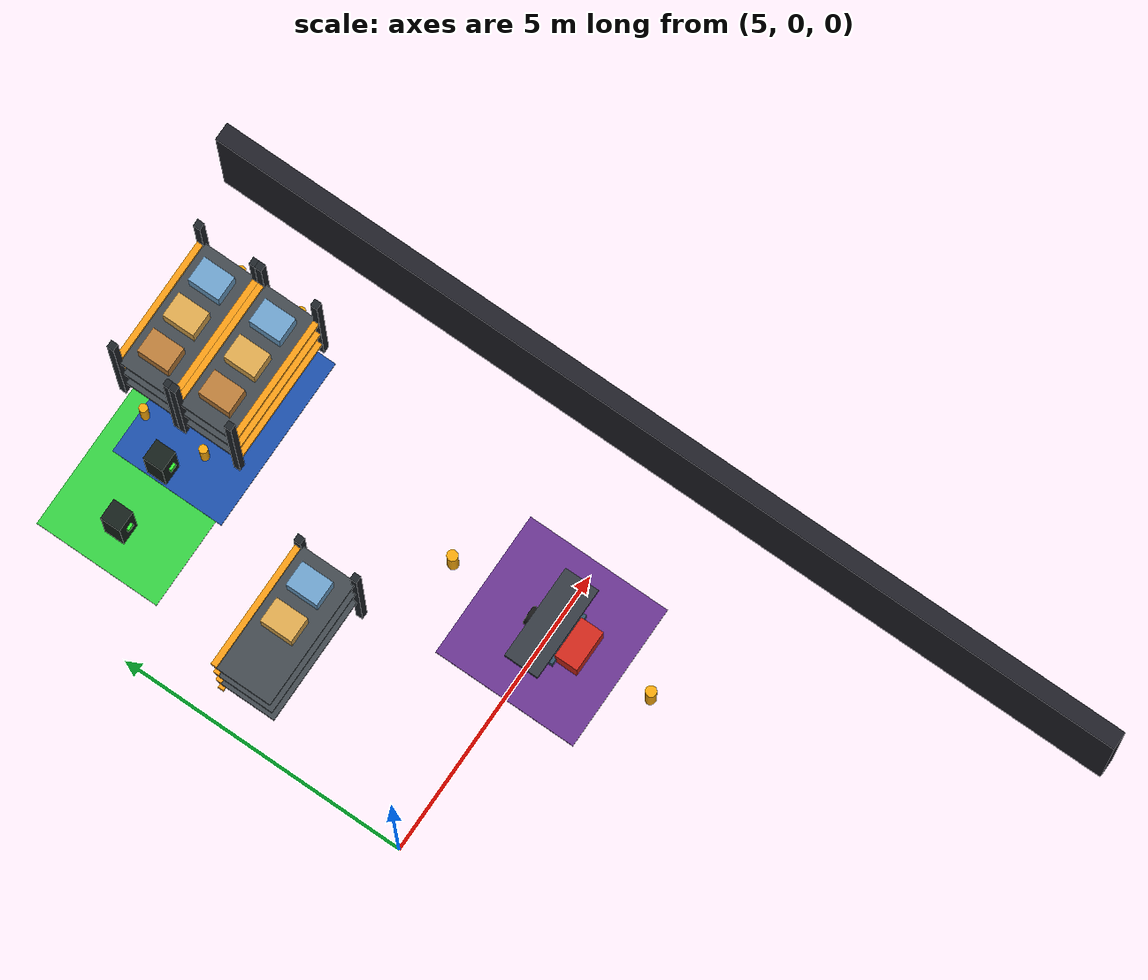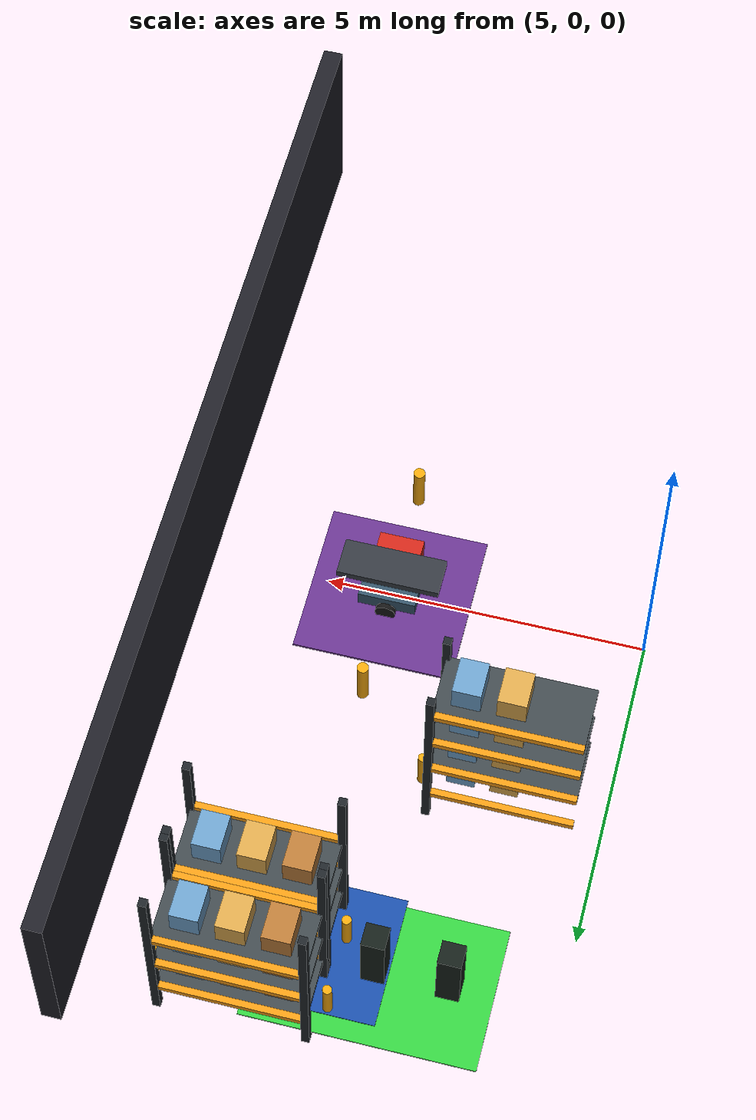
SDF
<sdf version="1.9">
 <world name="synaids_advanced_warehouse">
  <model name="wall_east">
   <static>true</static>
   <pose>12 0 1.5 0 0 0</pose>
   <link name="link">
    <collision name="collision"><geometry><box><size>0.3 16 3</size></box></geometry></collision>
    <visual name="visual">
     <geometry><box><size>0.3 16 3</size></box></geometry>
     <material><ambient>0.08 0.08 0.10 1</ambient><diffuse>0.12 0.12 0.15 1</diffuse></material>
    </visual>
   </link>
  </model>
  <model name="charging_station">
   <static>true</static>
   <pose>9 6 0.02 0 0 0</pose>
   <link name="link">
    <visual name="visual">
     <geometry><box><size>3 2 0.04</size></box></geometry>
     <material><ambient>0.05 0.15 0.35 1</ambient><diffuse>0.10 0.30 0.65 1</diffuse></material>
    </visual>
   </link>
  </model>
  <model name="maintenance_area">
   <static>true</static>
   <pose>9 0 0.02 0 0 0</pose>
   <link name="link">
    <visual name="visual">
     <geometry><box><size>2.5 2.5 0.04</size></box></geometry>
     <material><ambient>0.18 0.08 0.25 1</ambient><diffuse>0.40 0.20 0.55 1</diffuse></material>
    </visual>
   </link>
  </model>
  <model name="R2">
   <pose>9 0 0.25 0 0 0</pose>
   <link name="base_link">
    <inertial><mass>12</mass><inertia><ixx>0.5</ixx><iyy>0.5</iyy><izz>0.5</izz></inertia></inertial>
    <collision name="base_collision"><geometry><box><size>0.9 0.65 0.25</size></box></geometry></collision>
    <visual name="base_visual">
     <geometry><box><size>0.9 0.65 0.25</size></box></geometry>
     <material><ambient>0.10 0.16 0.20 1</ambient><diffuse>0.20 0.32 0.40 1</diffuse></material>
    </visual>
   </link>
   <link name="left_wheel">
    <pose>0 0.38 -0.12 1.5708 0 0</pose>
    <inertial><mass>1</mass><inertia><ixx>0.02</ixx><iyy>0.02</iyy><izz>0.02</izz></inertia></inertial>
    <collision name="collision">
     <geometry><cylinder><radius>0.16</radius><length>0.08</length></cylinder></geometry>
    </collision>
    <visual name="visual">
     <geometry><cylinder><radius>0.16</radius><length>0.08</length></cylinder></geometry>
     <material><ambient>0.03 0.03 0.03 1</ambient><diffuse>0.08 0.08 0.08 1</diffuse></material>
    </visual>
   </link>
   <link name="right_wheel">
    <pose>0 -0.38 -0.12 1.5708 0 0</pose>
    <inertial><mass>1</mass><inertia><ixx>0.02</ixx><iyy>0.02</iyy><izz>0.02</izz></inertia></inertial>
    <collision name="collision">
     <geometry><cylinder><radius>0.16</radius><length>0.08</length></cylinder></geometry>
    </collision>
    <visual name="visual">
     <geometry><cylinder><radius>0.16</radius><length>0.08</length></cylinder></geometry>
     <material><ambient>0.03 0.03 0.03 1</ambient><diffuse>0.08 0.08 0.08 1</diffuse></material>
    </visual>
   </link>
   <link name="sensor">
    <pose>0.35 0 0.18 0 0 0</pose>
    <visual name="visual">
     <geometry><cylinder><radius>0.10</radius><length>0.08</length></cylinder></geometry>
     <material><ambient>0.65 0.65 0.65 1</ambient><diffuse>0.75 0.75 0.75 1</diffuse></material>
    </visual>
   </link>
   <plugin filename="gz-sim-diff-drive-system" name="gz::sim::systems::DiffDrive">
    <left_joint>left_wheel_joint</left_joint>
    <right_joint>right_wheel_joint</right_joint>
    <wheel_separation>0.76</wheel_separation>
    <wheel_radius>0.16</wheel_radius>
    <topic>/R2/cmd_vel</topic>
    <odom_topic>/R2/odom</odom_topic>
    <frame_id>odom</frame_id>
    <child_frame_id>base_link</child_frame_id>
   </plugin>
   <link name="lidar">
    <pose>0 0 0.35 0 0 0</pose>
    <sensor name="lidar_sensor" type="gpu_lidar">
     <topic>/R2/scan</topic>
     <update_rate>10</update_rate>
     <lidar>
      <scan>
       <horizontal>
        <samples>360</samples>
        <resolution>1</resolution>
        <min_angle>-3.14159</min_angle>
        <max_angle>3.14159</max_angle>
       </horizontal>
      </scan>
      <range><min>0.12</min><max>12</max><resolution>0.01</resolution></range>
     </lidar>
    </sensor>
   </link>
   <joint name="left_wheel_joint" type="revolute">
    <parent>base_link</parent>
    <child>left_wheel</child>
    <axis><xyz>0 1 0</xyz></axis>
   </joint>
   <joint name="right_wheel_joint" type="revolute">
    <parent>base_link</parent>
    <child>right_wheel</child>
    <axis><xyz>0 1 0</xyz></axis>
   </joint>
  </model>
  <model name="storage_rack_4_post_2">
   <static>true</static>
   <pose>7.6 2.5 1.7 0 0 0</pose>
   <link name="link">
    <visual name="visual">
     <geometry><box><size>0.12 0.12 3.4</size></box></geometry>
     <material>
      <ambient>0.12 0.14 0.16 1</ambient>
      <diffuse>0.12 0.14 0.16 1</diffuse>
      <specular>0.15 0.15 0.15 1</specular>
     </material>
    </visual>
    <collision name="collision"><geometry><box><size>0.12 0.12 3.4</size></box></geometry></collision>
   </link>
  </model>
  <model name="storage_rack_4_post_3">
   <static>true</static>
   <pose>7.6 3.5 1.7 0 0 0</pose>
   <link name="link">
    <visual name="visual">
     <geometry><box><size>0.12 0.12 3.4</size></box></geometry>
     <material>
      <ambient>0.12 0.14 0.16 1</ambient>
      <diffuse>0.12 0.14 0.16 1</diffuse>
      <specular>0.15 0.15 0.15 1</specular>
     </material>
    </visual>
    <collision name="collision"><geometry><box><size>0.12 0.12 3.4</size></box></geometry></collision>
   </link>
  </model>
  <model name="storage_rack_4_beam_back_0">
   <static>true</static>
   <pose>6.5 3.5 0.65 0 0 0</pose>
   <link name="link">
    <visual name="visual">
     <geometry><box><size>2.2 0.1 0.1</size></box></geometry>
     <material>
      <ambient>0.95 0.60 0.08 1</ambient>
      <diffuse>0.95 0.60 0.08 1</diffuse>
      <specular>0.15 0.15 0.15 1</specular>
     </material>
    </visual>
    <collision name="collision"><geometry><box><size>2.2 0.1 0.1</size></box></geometry></collision>
   </link>
  </model>
  <model name="storage_rack_4_package_0_1">
   <static>true</static>
   <pose>6.5 3.0 0.87 0 0 0</pose>
   <link name="link">
    <visual name="visual">
     <geometry><box><size>0.42 0.55 0.42</size></box></geometry>
     <material>
      <ambient>0.85 0.65 0.30 1</ambient>
      <diffuse>0.85 0.65 0.30 1</diffuse>
      <specular>0.15 0.15 0.15 1</specular>
     </material>
    </visual>
    <collision name="collision"><geometry><box><size>0.42 0.55 0.42</size></box></geometry></collision>
   </link>
  </model>
  <model name="storage_rack_4_package_0_2">
   <static>true</static>
   <pose>7.1499999999999995 3.0 0.87 0 0 0</pose>
   <link name="link">
    <visual name="visual">
     <geometry><box><size>0.42 0.55 0.42</size></box></geometry>
     <material>
      <ambient>0.42 0.62 0.78 1</ambient>
      <diffuse>0.42 0.62 0.78 1</diffuse>
      <specular>0.15 0.15 0.15 1</specular>
     </material>
    </visual>
    <collision name="collision"><geometry><box><size>0.42 0.55 0.42</size></box></geometry></collision>
   </link>
  </model>
  <model name="storage_rack_4_beam_back_1">
   <static>true</static>
   <pose>6.5 3.5 1.4300000000000002 0 0 0</pose>
   <link name="link">
    <visual name="visual">
     <geometry><box><size>2.2 0.1 0.1</size></box></geometry>
     <material>
      <ambient>0.95 0.60 0.08 1</ambient>
      <diffuse>0.95 0.60 0.08 1</diffuse>
      <specular>0.15 0.15 0.15 1</specular>
     </material>
    </visual>
    <collision name="collision"><geometry><box><size>2.2 0.1 0.1</size></box></geometry></collision>
   </link>
  </model>
  <model name="storage_rack_4_shelf_1">
   <static>true</static>
   <pose>6.5 3.0 1.35 0 0 0</pose>
   <link name="link">
    <visual name="visual">
     <geometry><box><size>2.2 1.0 0.08</size></box></geometry>
     <material>
      <ambient>0.25 0.28 0.30 1</ambient>
      <diffuse>0.25 0.28 0.30 1</diffuse>
      <specular>0.15 0.15 0.15 1</specular>
     </material>
    </visual>
    <collision name="collision"><geometry><box><size>2.2 1.0 0.08</size></box></geometry></collision>
   </link>
  </model>
  <model name="storage_rack_4_package_1_1">
   <static>true</static>
   <pose>6.5 3.0 1.6500000000000001 0 0 0</pose>
   <link name="link">
    <visual name="visual">
     <geometry><box><size>0.42 0.55 0.42</size></box></geometry>
     <material>
      <ambient>0.85 0.65 0.30 1</ambient>
      <diffuse>0.85 0.65 0.30 1</diffuse>
      <specular>0.15 0.15 0.15 1</specular>
     </material>
    </visual>
    <collision name="collision"><geometry><box><size>0.42 0.55 0.42</size></box></geometry></collision>
   </link>
  </model>
  <model name="storage_rack_4_package_1_2">
   <static>true</static>
   <pose>7.1499999999999995 3.0 1.6500000000000001 0 0 0</pose>
   <link name="link">
    <visual name="visual">
     <geometry><box><size>0.42 0.55 0.42</size></box></geometry>
     <material>
      <ambient>0.42 0.62 0.78 1</ambient>
      <diffuse>0.42 0.62 0.78 1</diffuse>
      <specular>0.15 0.15 0.15 1</specular>
     </material>
    </visual>
    <collision name="collision"><geometry><box><size>0.42 0.55 0.42</size></box></geometry></collision>
   </link>
  </model>
  <model name="storage_rack_4_beam_back_2">
   <static>true</static>
   <pose>6.5 3.5 2.21 0 0 0</pose>
   <link name="link">
    <visual name="visual">
     <geometry><box><size>2.2 0.1 0.1</size></box></geometry>
     <material>
      <ambient>0.95 0.60 0.08 1</ambient>
      <diffuse>0.95 0.60 0.08 1</diffuse>
      <specular>0.15 0.15 0.15 1</specular>
     </material>
    </visual>
    <collision name="collision"><geometry><box><size>2.2 0.1 0.1</size></box></geometry></collision>
   </link>
  </model>
  <model name="storage_rack_4_shelf_2">
   <static>true</static>
   <pose>6.5 3.0 2.13 0 0 0</pose>
   <link name="link">
    <visual name="visual">
     <geometry><box><size>2.2 1.0 0.08</size></box></geometry>
     <material>
      <ambient>0.25 0.28 0.30 1</ambient>
      <diffuse>0.25 0.28 0.30 1</diffuse>
      <specular>0.15 0.15 0.15 1</specular>
     </material>
    </visual>
    <collision name="collision"><geometry><box><size>2.2 1.0 0.08</size></box></geometry></collision>
   </link>
  </model>
  <model name="storage_rack_4_package_2_1">
   <static>true</static>
   <pose>6.5 3.0 2.43 0 0 0</pose>
   <link name="link">
    <visual name="visual">
     <geometry><box><size>0.42 0.55 0.42</size></box></geometry>
     <material>
      <ambient>0.85 0.65 0.30 1</ambient>
      <diffuse>0.85 0.65 0.30 1</diffuse>
      <specular>0.15 0.15 0.15 1</specular>
     </material>
    </visual>
    <collision name="collision"><geometry><box><size>0.42 0.55 0.42</size></box></geometry></collision>
   </link>
  </model>
  <model name="storage_rack_4_package_2_2">
   <static>true</static>
   <pose>7.1499999999999995 3.0 2.43 0 0 0</pose>
   <link name="link">
    <visual name="visual">
     <geometry><box><size>0.42 0.55 0.42</size></box></geometry>
     <material>
      <ambient>0.42 0.62 0.78 1</ambient>
      <diffuse>0.42 0.62 0.78 1</diffuse>
      <specular>0.15 0.15 0.15 1</specular>
     </material>
    </visual>
    <collision name="collision"><geometry><box><size>0.42 0.55 0.42</size></box></geometry></collision>
   </link>
  </model>
  <model name="storage_rack_4_beam_back_3">
   <static>true</static>
   <pose>6.5 3.5 2.9899999999999998 0 0 0</pose>
   <link name="link">
    <visual name="visual">
     <geometry><box><size>2.2 0.1 0.1</size></box></geometry>
     <material>
      <ambient>0.95 0.60 0.08 1</ambient>
      <diffuse>0.95 0.60 0.08 1</diffuse>
      <specular>0.15 0.15 0.15 1</specular>
     </material>
    </visual>
    <collision name="collision"><geometry><box><size>2.2 0.1 0.1</size></box></geometry></collision>
   </link>
  </model>
  <model name="storage_rack_4_shelf_3">
   <static>true</static>
   <pose>6.5 3.0 2.9099999999999997 0 0 0</pose>
   <link name="link">
    <visual name="visual">
     <geometry><box><size>2.2 1.0 0.08</size></box></geometry>
     <material>
      <ambient>0.25 0.28 0.30 1</ambient>
      <diffuse>0.25 0.28 0.30 1</diffuse>
      <specular>0.15 0.15 0.15 1</specular>
     </material>
    </visual>
    <collision name="collision"><geometry><box><size>2.2 1.0 0.08</size></box></geometry></collision>
   </link>
  </model>
  <model name="storage_rack_4_package_3_1">
   <static>true</static>
   <pose>6.5 3.0 3.21 0 0 0</pose>
   <link name="link">
    <visual name="visual">
     <geometry><box><size>0.42 0.55 0.42</size></box></geometry>
     <material>
      <ambient>0.85 0.65 0.30 1</ambient>
      <diffuse>0.85 0.65 0.30 1</diffuse>
      <specular>0.15 0.15 0.15 1</specular>
     </material>
    </visual>
    <collision name="collision"><geometry><box><size>0.42 0.55 0.42</size></box></geometry></collision>
   </link>
  </model>
  <model name="storage_rack_4_package_3_2">
   <static>true</static>
   <pose>7.1499999999999995 3.0 3.21 0 0 0</pose>
   <link name="link">
    <visual name="visual">
     <geometry><box><size>0.42 0.55 0.42</size></box></geometry>
     <material>
      <ambient>0.42 0.62 0.78 1</ambient>
      <diffuse>0.42 0.62 0.78 1</diffuse>
      <specular>0.15 0.15 0.15 1</specular>
     </material>
    </visual>
    <collision name="collision"><geometry><box><size>0.42 0.55 0.42</size></box></geometry></collision>
   </link>
  </model>
  <model name="storage_rack_4_guard_right">
   <static>true</static>
   <pose>7.779999999999999 3.0 0.35 0 0 0</pose>
   <link name="link">
    <visual name="visual">
     <geometry><cylinder><radius>0.07</radius><length>0.7</length></cylinder></geometry>
     <material>
      <ambient>0.95 0.65 0.05 1</ambient>
      <diffuse>0.95 0.65 0.05 1</diffuse>
      <specular>0.15 0.15 0.15 1</specular>
     </material>
    </visual>
    <collision name="collision">
     <geometry><cylinder><radius>0.07</radius><length>0.7</length></cylinder></geometry>
    </collision>
   </link>
  </model>
  <model name="wall_rack_right_1_post_0">
   <static>true</static>
   <pose>8.4 5.3 1.7 0 0 0</pose>
   <link name="link">
    <visual name="visual">
     <geometry><box><size>0.12 0.12 3.4</size></box></geometry>
     <material>
      <ambient>0.12 0.14 0.16 1</ambient>
      <diffuse>0.12 0.14 0.16 1</diffuse>
      <specular>0.15 0.15 0.15 1</specular>
     </material>
    </visual>
    <collision name="collision"><geometry><box><size>0.12 0.12 3.4</size></box></geometry></collision>
   </link>
  </model>
  <model name="wall_rack_right_1_post_1">
   <static>true</static>
   <pose>8.4 6.3 1.7 0 0 0</pose>
   <link name="link">
    <visual name="visual">
     <geometry><box><size>0.12 0.12 3.4</size></box></geometry>
     <material>
      <ambient>0.12 0.14 0.16 1</ambient>
      <diffuse>0.12 0.14 0.16 1</diffuse>
      <specular>0.15 0.15 0.15 1</specular>
     </material>
    </visual>
    <collision name="collision"><geometry><box><size>0.12 0.12 3.4</size></box></geometry></collision>
   </link>
  </model>
  <model name="wall_rack_right_1_post_2">
   <static>true</static>
   <pose>10.6 5.3 1.7 0 0 0</pose>
   <link name="link">
    <visual name="visual">
     <geometry><box><size>0.12 0.12 3.4</size></box></geometry>
     <material>
      <ambient>0.12 0.14 0.16 1</ambient>
      <diffuse>0.12 0.14 0.16 1</diffuse>
      <specular>0.15 0.15 0.15 1</specular>
     </material>
    </visual>
    <collision name="collision"><geometry><box><size>0.12 0.12 3.4</size></box></geometry></collision>
   </link>
  </model>
  <model name="wall_rack_right_1_post_3">
   <static>true</static>
   <pose>10.6 6.3 1.7 0 0 0</pose>
   <link name="link">
    <visual name="visual">
     <geometry><box><size>0.12 0.12 3.4</size></box></geometry>
     <material>
      <ambient>0.12 0.14 0.16 1</ambient>
      <diffuse>0.12 0.14 0.16 1</diffuse>
      <specular>0.15 0.15 0.15 1</specular>
     </material>
    </visual>
    <collision name="collision"><geometry><box><size>0.12 0.12 3.4</size></box></geometry></collision>
   </link>
  </model>
  <model name="wall_rack_right_1_beam_front_0">
   <static>true</static>
   <pose>9.5 5.3 0.65 0 0 0</pose>
   <link name="link">
    <visual name="visual">
     <geometry><box><size>2.2 0.1 0.1</size></box></geometry>
     <material>
      <ambient>0.95 0.60 0.08 1</ambient>
      <diffuse>0.95 0.60 0.08 1</diffuse>
      <specular>0.15 0.15 0.15 1</specular>
     </material>
    </visual>
    <collision name="collision"><geometry><box><size>2.2 0.1 0.1</size></box></geometry></collision>
   </link>
  </model>
  <model name="wall_rack_right_1_beam_back_0">
   <static>true</static>
   <pose>9.5 6.3 0.65 0 0 0</pose>
   <link name="link">
    <visual name="visual">
     <geometry><box><size>2.2 0.1 0.1</size></box></geometry>
     <material>
      <ambient>0.95 0.60 0.08 1</ambient>
      <diffuse>0.95 0.60 0.08 1</diffuse>
      <specular>0.15 0.15 0.15 1</specular>
     </material>
    </visual>
    <collision name="collision"><geometry><box><size>2.2 0.1 0.1</size></box></geometry></collision>
   </link>
  </model>
  <model name="wall_rack_right_1_shelf_0">
   <static>true</static>
   <pose>9.5 5.8 0.5700000000000001 0 0 0</pose>
   <link name="link">
    <visual name="visual">
     <geometry><box><size>2.2 1.0 0.08</size></box></geometry>
     <material>
      <ambient>0.25 0.28 0.30 1</ambient>
      <diffuse>0.25 0.28 0.30 1</diffuse>
      <specular>0.15 0.15 0.15 1</specular>
     </material>
    </visual>
    <collision name="collision"><geometry><box><size>2.2 1.0 0.08</size></box></geometry></collision>
   </link>
  </model>
  <model name="wall_rack_right_1_package_0_0">
   <static>true</static>
   <pose>8.85 5.8 0.87 0 0 0</pose>
   <link name="link">
    <visual name="visual">
     <geometry><box><size>0.42 0.55 0.42</size></box></geometry>
     <material>
      <ambient>0.72 0.48 0.22 1</ambient>
      <diffuse>0.72 0.48 0.22 1</diffuse>
      <specular>0.15 0.15 0.15 1</specular>
     </material>
    </visual>
    <collision name="collision"><geometry><box><size>0.42 0.55 0.42</size></box></geometry></collision>
   </link>
  </model>
  <model name="wall_rack_right_1_package_0_1">
   <static>true</static>
   <pose>9.5 5.8 0.87 0 0 0</pose>
   <link name="link">
    <visual name="visual">
     <geometry><box><size>0.42 0.55 0.42</size></box></geometry>
     <material>
      <ambient>0.85 0.65 0.30 1</ambient>
      <diffuse>0.85 0.65 0.30 1</diffuse>
      <specular>0.15 0.15 0.15 1</specular>
     </material>
    </visual>
    <collision name="collision"><geometry><box><size>0.42 0.55 0.42</size></box></geometry></collision>
   </link>
  </model>
  <model name="wall_rack_right_1_package_0_2">
   <static>true</static>
   <pose>10.15 5.8 0.87 0 0 0</pose>
   <link name="link">
    <visual name="visual">
     <geometry><box><size>0.42 0.55 0.42</size></box></geometry>
     <material>
      <ambient>0.42 0.62 0.78 1</ambient>
      <diffuse>0.42 0.62 0.78 1</diffuse>
      <specular>0.15 0.15 0.15 1</specular>
     </material>
    </visual>
    <collision name="collision"><geometry><box><size>0.42 0.55 0.42</size></box></geometry></collision>
   </link>
  </model>
  <model name="wall_rack_right_1_beam_front_1">
   <static>true</static>
   <pose>9.5 5.3 1.4300000000000002 0 0 0</pose>
   <link name="link">
    <visual name="visual">
     <geometry><box><size>2.2 0.1 0.1</size></box></geometry>
     <material>
      <ambient>0.95 0.60 0.08 1</ambient>
      <diffuse>0.95 0.60 0.08 1</diffuse>
      <specular>0.15 0.15 0.15 1</specular>
     </material>
    </visual>
    <collision name="collision"><geometry><box><size>2.2 0.1 0.1</size></box></geometry></collision>
   </link>
  </model>
  <model name="wall_rack_right_1_beam_back_1">
   <static>true</static>
   <pose>9.5 6.3 1.4300000000000002 0 0 0</pose>
   <link name="link">
    <visual name="visual">
     <geometry><box><size>2.2 0.1 0.1</size></box></geometry>
     <material>
      <ambient>0.95 0.60 0.08 1</ambient>
      <diffuse>0.95 0.60 0.08 1</diffuse>
      <specular>0.15 0.15 0.15 1</specular>
     </material>
    </visual>
    <collision name="collision"><geometry><box><size>2.2 0.1 0.1</size></box></geometry></collision>
   </link>
  </model>
  <model name="wall_rack_right_1_shelf_1">
   <static>true</static>
   <pose>9.5 5.8 1.35 0 0 0</pose>
   <link name="link">
    <visual name="visual">
     <geometry><box><size>2.2 1.0 0.08</size></box></geometry>
     <material>
      <ambient>0.25 0.28 0.30 1</ambient>
      <diffuse>0.25 0.28 0.30 1</diffuse>
      <specular>0.15 0.15 0.15 1</specular>
     </material>
    </visual>
    <collision name="collision"><geometry><box><size>2.2 1.0 0.08</size></box></geometry></collision>
   </link>
  </model>
  <model name="wall_rack_right_1_package_1_0">
   <static>true</static>
   <pose>8.85 5.8 1.6500000000000001 0 0 0</pose>
   <link name="link">
    <visual name="visual">
     <geometry><box><size>0.42 0.55 0.42</size></box></geometry>
     <material>
      <ambient>0.72 0.48 0.22 1</ambient>
      <diffuse>0.72 0.48 0.22 1</diffuse>
      <specular>0.15 0.15 0.15 1</specular>
     </material>
    </visual>
    <collision name="collision"><geometry><box><size>0.42 0.55 0.42</size></box></geometry></collision>
   </link>
  </model>
  <model name="wall_rack_right_1_package_1_1">
   <static>true</static>
   <pose>9.5 5.8 1.6500000000000001 0 0 0</pose>
   <link name="link">
    <visual name="visual">
     <geometry><box><size>0.42 0.55 0.42</size></box></geometry>
     <material>
      <ambient>0.85 0.65 0.30 1</ambient>
      <diffuse>0.85 0.65 0.30 1</diffuse>
      <specular>0.15 0.15 0.15 1</specular>
     </material>
    </visual>
    <collision name="collision"><geometry><box><size>0.42 0.55 0.42</size></box></geometry></collision>
   </link>
  </model>
  <model name="wall_rack_right_1_package_1_2">
   <static>true</static>
   <pose>10.15 5.8 1.6500000000000001 0 0 0</pose>
   <link name="link">
    <visual name="visual">
     <geometry><box><size>0.42 0.55 0.42</size></box></geometry>
     <material>
      <ambient>0.42 0.62 0.78 1</ambient>
      <diffuse>0.42 0.62 0.78 1</diffuse>
      <specular>0.15 0.15 0.15 1</specular>
     </material>
    </visual>
    <collision name="collision"><geometry><box><size>0.42 0.55 0.42</size></box></geometry></collision>
   </link>
  </model>
  <model name="wall_rack_right_1_beam_front_2">
   <static>true</static>
   <pose>9.5 5.3 2.21 0 0 0</pose>
   <link name="link">
    <visual name="visual">
     <geometry><box><size>2.2 0.1 0.1</size></box></geometry>
     <material>
      <ambient>0.95 0.60 0.08 1</ambient>
      <diffuse>0.95 0.60 0.08 1</diffuse>
      <specular>0.15 0.15 0.15 1</specular>
     </material>
    </visual>
    <collision name="collision"><geometry><box><size>2.2 0.1 0.1</size></box></geometry></collision>
   </link>
  </model>
  <model name="wall_rack_right_1_beam_back_2">
   <static>true</static>
   <pose>9.5 6.3 2.21 0 0 0</pose>
   <link name="link">
    <visual name="visual">
     <geometry><box><size>2.2 0.1 0.1</size></box></geometry>
     <material>
      <ambient>0.95 0.60 0.08 1</ambient>
      <diffuse>0.95 0.60 0.08 1</diffuse>
      <specular>0.15 0.15 0.15 1</specular>
     </material>
    </visual>
    <collision name="collision"><geometry><box><size>2.2 0.1 0.1</size></box></geometry></collision>
   </link>
  </model>
  <model name="wall_rack_right_1_shelf_2">
   <static>true</static>
   <pose>9.5 5.8 2.13 0 0 0</pose>
   <link name="link">
    <visual name="visual">
     <geometry><box><size>2.2 1.0 0.08</size></box></geometry>
     <material>
      <ambient>0.25 0.28 0.30 1</ambient>
      <diffuse>0.25 0.28 0.30 1</diffuse>
      <specular>0.15 0.15 0.15 1</specular>
     </material>
    </visual>
    <collision name="collision"><geometry><box><size>2.2 1.0 0.08</size></box></geometry></collision>
   </link>
  </model>
  <model name="wall_rack_right_1_package_2_0">
   <static>true</static>
   <pose>8.85 5.8 2.43 0 0 0</pose>
   <link name="link">
    <visual name="visual">
     <geometry><box><size>0.42 0.55 0.42</size></box></geometry>
     <material>
      <ambient>0.72 0.48 0.22 1</ambient>
      <diffuse>0.72 0.48 0.22 1</diffuse>
      <specular>0.15 0.15 0.15 1</specular>
     </material>
    </visual>
    <collision name="collision"><geometry><box><size>0.42 0.55 0.42</size></box></geometry></collision>
   </link>
  </model>
  <model name="wall_rack_right_1_package_2_1">
   <static>true</static>
   <pose>9.5 5.8 2.43 0 0 0</pose>
   <link name="link">
    <visual name="visual">
     <geometry><box><size>0.42 0.55 0.42</size></box></geometry>
     <material>
      <ambient>0.85 0.65 0.30 1</ambient>
      <diffuse>0.85 0.65 0.30 1</diffuse>
      <specular>0.15 0.15 0.15 1</specular>
     </material>
    </visual>
    <collision name="collision"><geometry><box><size>0.42 0.55 0.42</size></box></geometry></collision>
   </link>
  </model>
  <model name="wall_rack_right_1_package_2_2">
   <static>true</static>
   <pose>10.15 5.8 2.43 0 0 0</pose>
   <link name="link">
    <visual name="visual">
     <geometry><box><size>0.42 0.55 0.42</size></box></geometry>
     <material>
      <ambient>0.42 0.62 0.78 1</ambient>
      <diffuse>0.42 0.62 0.78 1</diffuse>
      <specular>0.15 0.15 0.15 1</specular>
     </material>
    </visual>
    <collision name="collision"><geometry><box><size>0.42 0.55 0.42</size></box></geometry></collision>
   </link>
  </model>
  <model name="wall_rack_right_1_guard_left">
   <static>true</static>
   <pose>8.22 5.8 0.35 0 0 0</pose>
   <link name="link">
    <visual name="visual">
     <geometry><cylinder><radius>0.07</radius><length>0.7</length></cylinder></geometry>
     <material>
      <ambient>0.95 0.65 0.05 1</ambient>
      <diffuse>0.95 0.65 0.05 1</diffuse>
      <specular>0.15 0.15 0.15 1</specular>
     </material>
    </visual>
    <collision name="collision">
     <geometry><cylinder><radius>0.07</radius><length>0.7</length></cylinder></geometry>
    </collision>
   </link>
  </model>
  <model name="wall_rack_right_1_guard_right">
   <static>true</static>
   <pose>10.78 5.8 0.35 0 0 0</pose>
   <link name="link">
    <visual name="visual">
     <geometry><cylinder><radius>0.07</radius><length>0.7</length></cylinder></geometry>
     <material>
      <ambient>0.95 0.65 0.05 1</ambient>
      <diffuse>0.95 0.65 0.05 1</diffuse>
      <specular>0.15 0.15 0.15 1</specular>
     </material>
    </visual>
    <collision name="collision">
     <geometry><cylinder><radius>0.07</radius><length>0.7</length></cylinder></geometry>
    </collision>
   </link>
  </model>
  <model name="wall_rack_right_2_post_0">
   <static>true</static>
   <pose>8.4 6.4 1.7 0 0 0</pose>
   <link name="link">
    <visual name="visual">
     <geometry><box><size>0.12 0.12 3.4</size></box></geometry>
     <material>
      <ambient>0.12 0.14 0.16 1</ambient>
      <diffuse>0.12 0.14 0.16 1</diffuse>
      <specular>0.15 0.15 0.15 1</specular>
     </material>
    </visual>
    <collision name="collision"><geometry><box><size>0.12 0.12 3.4</size></box></geometry></collision>
   </link>
  </model>
  <model name="wall_rack_right_2_post_1">
   <static>true</static>
   <pose>8.4 7.4 1.7 0 0 0</pose>
   <link name="link">
    <visual name="visual">
     <geometry><box><size>0.12 0.12 3.4</size></box></geometry>
     <material>
      <ambient>0.12 0.14 0.16 1</ambient>
      <diffuse>0.12 0.14 0.16 1</diffuse>
      <specular>0.15 0.15 0.15 1</specular>
     </material>
    </visual>
    <collision name="collision"><geometry><box><size>0.12 0.12 3.4</size></box></geometry></collision>
   </link>
  </model>
  <model name="wall_rack_right_2_post_2">
   <static>true</static>
   <pose>10.6 6.4 1.7 0 0 0</pose>
   <link name="link">
    <visual name="visual">
     <geometry><box><size>0.12 0.12 3.4</size></box></geometry>
     <material>
      <ambient>0.12 0.14 0.16 1</ambient>
      <diffuse>0.12 0.14 0.16 1</diffuse>
      <specular>0.15 0.15 0.15 1</specular>
     </material>
    </visual>
    <collision name="collision"><geometry><box><size>0.12 0.12 3.4</size></box></geometry></collision>
   </link>
  </model>
  <model name="wall_rack_right_2_post_3">
   <static>true</static>
   <pose>10.6 7.4 1.7 0 0 0</pose>
   <link name="link">
    <visual name="visual">
     <geometry><box><size>0.12 0.12 3.4</size></box></geometry>
     <material>
      <ambient>0.12 0.14 0.16 1</ambient>
      <diffuse>0.12 0.14 0.16 1</diffuse>
      <specular>0.15 0.15 0.15 1</specular>
     </material>
    </visual>
    <collision name="collision"><geometry><box><size>0.12 0.12 3.4</size></box></geometry></collision>
   </link>
  </model>
  <model name="wall_rack_right_2_beam_front_0">
   <static>true</static>
   <pose>9.5 6.4 0.65 0 0 0</pose>
   <link name="link">
    <visual name="visual">
     <geometry><box><size>2.2 0.1 0.1</size></box></geometry>
     <material>
      <ambient>0.95 0.60 0.08 1</ambient>
      <diffuse>0.95 0.60 0.08 1</diffuse>
      <specular>0.15 0.15 0.15 1</specular>
     </material>
    </visual>
    <collision name="collision"><geometry><box><size>2.2 0.1 0.1</size></box></geometry></collision>
   </link>
  </model>
  <model name="wall_rack_right_2_beam_back_0">
   <static>true</static>
   <pose>9.5 7.4 0.65 0 0 0</pose>
   <link name="link">
    <visual name="visual">
     <geometry><box><size>2.2 0.1 0.1</size></box></geometry>
     <material>
      <ambient>0.95 0.60 0.08 1</ambient>
      <diffuse>0.95 0.60 0.08 1</diffuse>
      <specular>0.15 0.15 0.15 1</specular>
     </material>
    </visual>
    <collision name="collision"><geometry><box><size>2.2 0.1 0.1</size></box></geometry></collision>
   </link>
  </model>
  <model name="wall_rack_right_2_shelf_0">
   <static>true</static>
   <pose>9.5 6.9 0.5700000000000001 0 0 0</pose>
   <link name="link">
    <visual name="visual">
     <geometry><box><size>2.2 1.0 0.08</size></box></geometry>
     <material>
      <ambient>0.25 0.28 0.30 1</ambient>
      <diffuse>0.25 0.28 0.30 1</diffuse>
      <specular>0.15 0.15 0.15 1</specular>
     </material>
    </visual>
    <collision name="collision"><geometry><box><size>2.2 1.0 0.08</size></box></geometry></collision>
   </link>
  </model>
  <model name="wall_rack_right_2_package_0_0">
   <static>true</static>
   <pose>8.85 6.9 0.87 0 0 0</pose>
   <link name="link">
    <visual name="visual">
     <geometry><box><size>0.42 0.55 0.42</size></box></geometry>
     <material>
      <ambient>0.72 0.48 0.22 1</ambient>
      <diffuse>0.72 0.48 0.22 1</diffuse>
      <specular>0.15 0.15 0.15 1</specular>
     </material>
    </visual>
    <collision name="collision"><geometry><box><size>0.42 0.55 0.42</size></box></geometry></collision>
   </link>
  </model>
  <model name="wall_rack_right_2_package_0_1">
   <static>true</static>
   <pose>9.5 6.9 0.87 0 0 0</pose>
   <link name="link">
    <visual name="visual">
     <geometry><box><size>0.42 0.55 0.42</size></box></geometry>
     <material>
      <ambient>0.85 0.65 0.30 1</ambient>
      <diffuse>0.85 0.65 0.30 1</diffuse>
      <specular>0.15 0.15 0.15 1</specular>
     </material>
    </visual>
    <collision name="collision"><geometry><box><size>0.42 0.55 0.42</size></box></geometry></collision>
   </link>
  </model>
  <model name="wall_rack_right_2_package_0_2">
   <static>true</static>
   <pose>10.15 6.9 0.87 0 0 0</pose>
   <link name="link">
    <visual name="visual">
     <geometry><box><size>0.42 0.55 0.42</size></box></geometry>
     <material>
      <ambient>0.42 0.62 0.78 1</ambient>
      <diffuse>0.42 0.62 0.78 1</diffuse>
      <specular>0.15 0.15 0.15 1</specular>
     </material>
    </visual>
    <collision name="collision"><geometry><box><size>0.42 0.55 0.42</size></box></geometry></collision>
   </link>
  </model>
  <model name="wall_rack_right_2_beam_front_1">
   <static>true</static>
   <pose>9.5 6.4 1.4300000000000002 0 0 0</pose>
   <link name="link">
    <visual name="visual">
     <geometry><box><size>2.2 0.1 0.1</size></box></geometry>
     <material>
      <ambient>0.95 0.60 0.08 1</ambient>
      <diffuse>0.95 0.60 0.08 1</diffuse>
      <specular>0.15 0.15 0.15 1</specular>
     </material>
    </visual>
    <collision name="collision"><geometry><box><size>2.2 0.1 0.1</size></box></geometry></collision>
   </link>
  </model>
  <model name="wall_rack_right_2_beam_back_1">
   <static>true</static>
   <pose>9.5 7.4 1.4300000000000002 0 0 0</pose>
   <link name="link">
    <visual name="visual">
     <geometry><box><size>2.2 0.1 0.1</size></box></geometry>
     <material>
      <ambient>0.95 0.60 0.08 1</ambient>
      <diffuse>0.95 0.60 0.08 1</diffuse>
      <specular>0.15 0.15 0.15 1</specular>
     </material>
    </visual>
    <collision name="collision"><geometry><box><size>2.2 0.1 0.1</size></box></geometry></collision>
   </link>
  </model>
  <model name="wall_rack_right_2_shelf_1">
   <static>true</static>
   <pose>9.5 6.9 1.35 0 0 0</pose>
   <link name="link">
    <visual name="visual">
     <geometry><box><size>2.2 1.0 0.08</size></box></geometry>
     <material>
      <ambient>0.25 0.28 0.30 1</ambient>
      <diffuse>0.25 0.28 0.30 1</diffuse>
      <specular>0.15 0.15 0.15 1</specular>
     </material>
    </visual>
    <collision name="collision"><geometry><box><size>2.2 1.0 0.08</size></box></geometry></collision>
   </link>
  </model>
  <model name="wall_rack_right_2_package_1_0">
   <static>true</static>
   <pose>8.85 6.9 1.6500000000000001 0 0 0</pose>
   <link name="link">
    <visual name="visual">
     <geometry><box><size>0.42 0.55 0.42</size></box></geometry>
     <material>
      <ambient>0.72 0.48 0.22 1</ambient>
      <diffuse>0.72 0.48 0.22 1</diffuse>
      <specular>0.15 0.15 0.15 1</specular>
     </material>
    </visual>
    <collision name="collision"><geometry><box><size>0.42 0.55 0.42</size></box></geometry></collision>
   </link>
  </model>
  <model name="wall_rack_right_2_package_1_1">
   <static>true</static>
   <pose>9.5 6.9 1.6500000000000001 0 0 0</pose>
   <link name="link">
    <visual name="visual">
     <geometry><box><size>0.42 0.55 0.42</size></box></geometry>
     <material>
      <ambient>0.85 0.65 0.30 1</ambient>
      <diffuse>0.85 0.65 0.30 1</diffuse>
      <specular>0.15 0.15 0.15 1</specular>
     </material>
    </visual>
    <collision name="collision"><geometry><box><size>0.42 0.55 0.42</size></box></geometry></collision>
   </link>
  </model>
  <model name="wall_rack_right_2_package_1_2">
   <static>true</static>
   <pose>10.15 6.9 1.6500000000000001 0 0 0</pose>
   <link name="link">
    <visual name="visual">
     <geometry><box><size>0.42 0.55 0.42</size></box></geometry>
     <material>
      <ambient>0.42 0.62 0.78 1</ambient>
      <diffuse>0.42 0.62 0.78 1</diffuse>
      <specular>0.15 0.15 0.15 1</specular>
     </material>
    </visual>
    <collision name="collision"><geometry><box><size>0.42 0.55 0.42</size></box></geometry></collision>
   </link>
  </model>
  <model name="wall_rack_right_2_beam_front_2">
   <static>true</static>
   <pose>9.5 6.4 2.21 0 0 0</pose>
   <link name="link">
    <visual name="visual">
     <geometry><box><size>2.2 0.1 0.1</size></box></geometry>
     <material>
      <ambient>0.95 0.60 0.08 1</ambient>
      <diffuse>0.95 0.60 0.08 1</diffuse>
      <specular>0.15 0.15 0.15 1</specular>
     </material>
    </visual>
    <collision name="collision"><geometry><box><size>2.2 0.1 0.1</size></box></geometry></collision>
   </link>
  </model>
  <model name="wall_rack_right_2_beam_back_2">
   <static>true</static>
   <pose>9.5 7.4 2.21 0 0 0</pose>
   <link name="link">
    <visual name="visual">
     <geometry><box><size>2.2 0.1 0.1</size></box></geometry>
     <material>
      <ambient>0.95 0.60 0.08 1</ambient>
      <diffuse>0.95 0.60 0.08 1</diffuse>
      <specular>0.15 0.15 0.15 1</specular>
     </material>
    </visual>
    <collision name="collision"><geometry><box><size>2.2 0.1 0.1</size></box></geometry></collision>
   </link>
  </model>
  <model name="wall_rack_right_2_shelf_2">
   <static>true</static>
   <pose>9.5 6.9 2.13 0 0 0</pose>
   <link name="link">
    <visual name="visual">
     <geometry><box><size>2.2 1.0 0.08</size></box></geometry>
     <material>
      <ambient>0.25 0.28 0.30 1</ambient>
      <diffuse>0.25 0.28 0.30 1</diffuse>
      <specular>0.15 0.15 0.15 1</specular>
     </material>
    </visual>
    <collision name="collision"><geometry><box><size>2.2 1.0 0.08</size></box></geometry></collision>
   </link>
  </model>
  <model name="wall_rack_right_2_package_2_0">
   <static>true</static>
   <pose>8.85 6.9 2.43 0 0 0</pose>
   <link name="link">
    <visual name="visual">
     <geometry><box><size>0.42 0.55 0.42</size></box></geometry>
     <material>
      <ambient>0.72 0.48 0.22 1</ambient>
      <diffuse>0.72 0.48 0.22 1</diffuse>
      <specular>0.15 0.15 0.15 1</specular>
     </material>
    </visual>
    <collision name="collision"><geometry><box><size>0.42 0.55 0.42</size></box></geometry></collision>
   </link>
  </model>
  <model name="wall_rack_right_2_package_2_1">
   <static>true</static>
   <pose>9.5 6.9 2.43 0 0 0</pose>
   <link name="link">
    <visual name="visual">
     <geometry><box><size>0.42 0.55 0.42</size></box></geometry>
     <material>
      <ambient>0.85 0.65 0.30 1</ambient>
      <diffuse>0.85 0.65 0.30 1</diffuse>
      <specular>0.15 0.15 0.15 1</specular>
     </material>
    </visual>
    <collision name="collision"><geometry><box><size>0.42 0.55 0.42</size></box></geometry></collision>
   </link>
  </model>
  <model name="wall_rack_right_2_package_2_2">
   <static>true</static>
   <pose>10.15 6.9 2.43 0 0 0</pose>
   <link name="link">
    <visual name="visual">
     <geometry><box><size>0.42 0.55 0.42</size></box></geometry>
     <material>
      <ambient>0.42 0.62 0.78 1</ambient>
      <diffuse>0.42 0.62 0.78 1</diffuse>
      <specular>0.15 0.15 0.15 1</specular>
     </material>
    </visual>
    <collision name="collision"><geometry><box><size>0.42 0.55 0.42</size></box></geometry></collision>
   </link>
  </model>
  <model name="wall_rack_right_2_guard_left">
   <static>true</static>
   <pose>8.22 6.9 0.35 0 0 0</pose>
   <link name="link">
    <visual name="visual">
     <geometry><cylinder><radius>0.07</radius><length>0.7</length></cylinder></geometry>
     <material>
      <ambient>0.95 0.65 0.05 1</ambient>
      <diffuse>0.95 0.65 0.05 1</diffuse>
      <specular>0.15 0.15 0.15 1</specular>
     </material>
    </visual>
    <collision name="collision">
     <geometry><cylinder><radius>0.07</radius><length>0.7</length></cylinder></geometry>
    </collision>
   </link>
  </model>
  <model name="wall_rack_right_2_guard_right">
   <static>true</static>
   <pose>10.78 6.9 0.35 0 0 0</pose>
   <link name="link">
    <visual name="visual">
     <geometry><cylinder><radius>0.07</radius><length>0.7</length></cylinder></geometry>
     <material>
      <ambient>0.95 0.65 0.05 1</ambient>
      <diffuse>0.95 0.65 0.05 1</diffuse>
      <specular>0.15 0.15 0.15 1</specular>
     </material>
    </visual>
    <collision name="collision">
     <geometry><cylinder><radius>0.07</radius><length>0.7</length></cylinder></geometry>
    </collision>
   </link>
  </model>
  <model name="charging_floor">
   <static>true</static>
   <pose>7.7 6.2 0.012 0 0 0</pose>
   <link name="link">
    <visual name="visual">
     <geometry><box><size>3.5 2.2 0.025</size></box></geometry>
     <material>
      <ambient>0.20 0.80 0.25 1</ambient>
      <diffuse>0.20 0.80 0.25 1</diffuse>
      <specular>0.15 0.15 0.15 1</specular>
     </material>
    </visual>
   </link>
  </model>
  <model name="charger_1">
   <static>true</static>
   <pose>6.6 6.2 0.7 0 0 0</pose>
   <link name="link">
    <visual name="visual">
     <geometry><box><size>0.35 0.35 1.2</size></box></geometry>
     <material>
      <ambient>0.08 0.12 0.10 1</ambient>
      <diffuse>0.08 0.12 0.10 1</diffuse>
      <specular>0.15 0.15 0.15 1</specular>
     </material>
    </visual>
    <collision name="collision"><geometry><box><size>0.35 0.35 1.2</size></box></geometry></collision>
   </link>
  </model>
  <model name="charger_light_1">
   <static>true</static>
   <pose>6.6 5.98 0.95 0 0 0</pose>
   <link name="link">
    <visual name="visual">
     <geometry><box><size>0.12 0.04 0.15</size></box></geometry>
     <material>
      <ambient>0.20 1.0 0.20 1</ambient>
      <diffuse>0.20 1.0 0.20 1</diffuse>
      <specular>0.15 0.15 0.15 1</specular>
     </material>
    </visual>
   </link>
  </model>
  <model name="charger_2">
   <static>true</static>
   <pose>7.699999999999999 6.2 0.7 0 0 0</pose>
   <link name="link">
    <visual name="visual">
     <geometry><box><size>0.35 0.35 1.2</size></box></geometry>
     <material>
      <ambient>0.08 0.12 0.10 1</ambient>
      <diffuse>0.08 0.12 0.10 1</diffuse>
      <specular>0.15 0.15 0.15 1</specular>
     </material>
    </visual>
    <collision name="collision"><geometry><box><size>0.35 0.35 1.2</size></box></geometry></collision>
   </link>
  </model>
  <model name="charger_light_2">
   <static>true</static>
   <pose>7.699999999999999 5.98 0.95 0 0 0</pose>
   <link name="link">
    <visual name="visual">
     <geometry><box><size>0.12 0.04 0.15</size></box></geometry>
     <material>
      <ambient>0.20 1.0 0.20 1</ambient>
      <diffuse>0.20 1.0 0.20 1</diffuse>
      <specular>0.15 0.15 0.15 1</specular>
     </material>
    </visual>
   </link>
  </model>
  <model name="charger_3">
   <static>true</static>
   <pose>8.8 6.2 0.7 0 0 0</pose>
   <link name="link">
    <visual name="visual">
     <geometry><box><size>0.35 0.35 1.2</size></box></geometry>
     <material>
      <ambient>0.08 0.12 0.10 1</ambient>
      <diffuse>0.08 0.12 0.10 1</diffuse>
      <specular>0.15 0.15 0.15 1</specular>
     </material>
    </visual>
    <collision name="collision"><geometry><box><size>0.35 0.35 1.2</size></box></geometry></collision>
   </link>
  </model>
  <model name="charger_light_3">
   <static>true</static>
   <pose>8.8 5.98 0.95 0 0 0</pose>
   <link name="link">
    <visual name="visual">
     <geometry><box><size>0.12 0.04 0.15</size></box></geometry>
     <material>
      <ambient>0.20 1.0 0.20 1</ambient>
      <diffuse>0.20 1.0 0.20 1</diffuse>
      <specular>0.15 0.15 0.15 1</specular>
     </material>
    </visual>
   </link>
  </model>
  <model name="safety_bollard_10">
   <static>true</static>
   <pose>9.0 1.8 0.4 0 0 0</pose>
   <link name="link">
    <visual name="visual">
     <geometry><cylinder><radius>0.09</radius><length>0.8</length></cylinder></geometry>
     <material>
      <ambient>0.95 0.65 0.05 1</ambient>
      <diffuse>0.95 0.65 0.05 1</diffuse>
      <specular>0.15 0.15 0.15 1</specular>
     </material>
    </visual>
    <collision name="collision">
     <geometry><cylinder><radius>0.09</radius><length>0.8</length></cylinder></geometry>
    </collision>
   </link>
  </model>
  <model name="safety_bollard_11">
   <static>true</static>
   <pose>9.0 -1.8 0.4 0 0 0</pose>
   <link name="link">
    <visual name="visual">
     <geometry><cylinder><radius>0.09</radius><length>0.8</length></cylinder></geometry>
     <material>
      <ambient>0.95 0.65 0.05 1</ambient>
      <diffuse>0.95 0.65 0.05 1</diffuse>
      <specular>0.15 0.15 0.15 1</specular>
     </material>
    </visual>
    <collision name="collision">
     <geometry><cylinder><radius>0.09</radius><length>0.8</length></cylinder></geometry>
    </collision>
   </link>
  </model>
  <model name="enhanced_maintenance_area">
   <static>true</static>
   <pose>9.0 0 0.012 0 0 0</pose>
   <link name="link">
    <visual name="visual">
     <geometry><box><size>2.0 2.5 0.025</size></box></geometry>
     <material>
      <ambient>0.55 0.55 0.58 1</ambient>
      <diffuse>0.55 0.55 0.58 1</diffuse>
      <specular>0.15 0.15 0.15 1</specular>
     </material>
    </visual>
   </link>
  </model>
  <model name="maintenance_workbench">
   <static>true</static>
   <pose>9.0 0.0 0.8 0 0 0</pose>
   <link name="link">
    <visual name="visual">
     <geometry><box><size>1.6 0.6 0.12</size></box></geometry>
     <material>
      <ambient>0.20 0.22 0.25 1</ambient>
      <diffuse>0.20 0.22 0.25 1</diffuse>
      <specular>0.15 0.15 0.15 1</specular>
     </material>
    </visual>
    <collision name="collision"><geometry><box><size>1.6 0.6 0.12</size></box></geometry></collision>
   </link>
  </model>
  <model name="maintenance_toolbox">
   <static>true</static>
   <pose>9.0 -0.5 0.35 0 0 0</pose>
   <link name="link">
    <visual name="visual">
     <geometry><box><size>0.7 0.4 0.55</size></box></geometry>
     <material>
      <ambient>0.80 0.15 0.10 1</ambient>
      <diffuse>0.80 0.15 0.10 1</diffuse>
      <specular>0.15 0.15 0.15 1</specular>
     </material>
    </visual>
    <collision name="collision"><geometry><box><size>0.7 0.4 0.55</size></box></geometry></collision>
   </link>
  </model>
 </world>
</sdf>
